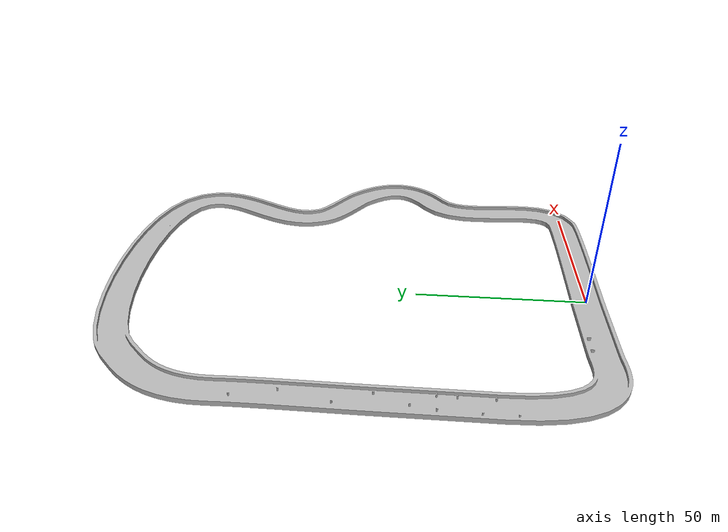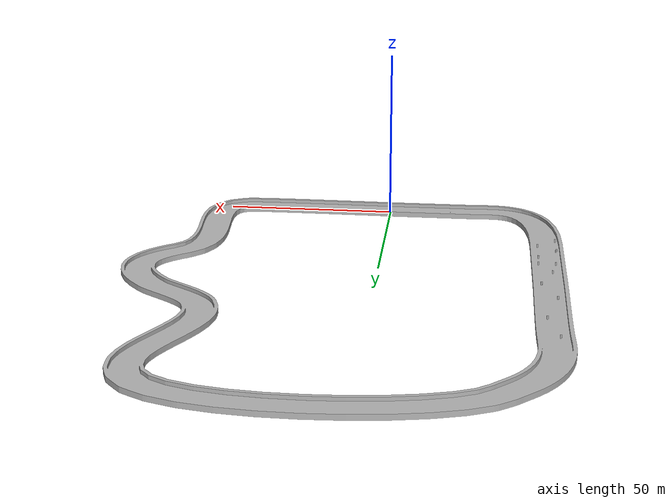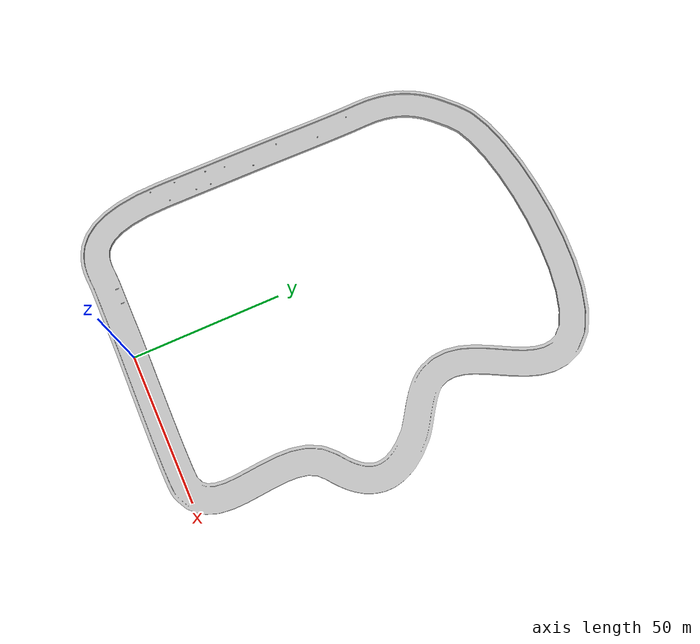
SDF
<?xml version="1.0"?>
<sdf version="1.6">
  <world name="depot">
<physics type="ode">
    <max_step_size>0.001</max_step_size>
    <real_time_factor>1.0</real_time_factor>
    <real_time_update_rate>1000</real_time_update_rate>
    </physics>
    <render_engine>ogre2</render_engine>
    <plugin name='ignition::gazebo::systems::Physics' filename='ignition-gazebo-physics-system'/>
    <plugin name='ignition::gazebo::systems::UserCommands' filename='ignition-gazebo-user-commands-system'/>
    <plugin name='ignition::gazebo::systems::SceneBroadcaster' filename='ignition-gazebo-scene-broadcaster-system'/>
    <plugin name='ignition::gazebo::systems::Contact' filename='ignition-gazebo-contact-system'/>
    <plugin name='ignition::gazebo::systems::Imu' filename='ignition-gazebo-imu-system'/>
    <plugin name='ignition::gazebo::systems::AirPressure' filename='ignition-gazebo-air-pressure-system'/>
    <plugin filename="ignition-gazebo-sensors-system" name="ignition::gazebo::systems::Sensors">
      <render_engine>ogre2</render_engine>
    </plugin>

    <gui fullscreen="0">
        <!-- 3D scene -->
      <plugin filename="GzScene3D" name="3D View">
      <ignition-gui>
          <title>3D View</title>
          <property type="bool" key="showTitleBar">false</property>
          <property type="string" key="state">docked</property>
      </ignition-gui>

    <engine>ogre2</engine>
      <scene>scene</scene>
      <ambient_light>1.0 1.0 1.0</ambient_light>
      <background_color>0.8 0.8 0.8</background_color>
      <camera_pose>-6 0 6 0 0.5 0</camera_pose>
    </plugin>

    <!-- World control -->
    <plugin filename="WorldControl" name="World control">
      <ignition-gui>
        <title>World control</title>
        <property type="bool" key="showTitleBar">false</property>
        <property type="bool" key="resizable">false</property>
        <property type="double" key="height">72</property>
        <property type="double" key="width">121</property>
        <property type="double" key="z">1</property>

        <property type="string" key="state">floating</property>
        <anchors target="3D View">
          <line own="left" target="left"/>
          <line own="bottom" target="bottom"/>
        </anchors>
      </ignition-gui>

      <play_pause>true</play_pause>
      <step>true</step>
    </plugin>

    <!-- World statistics -->
    <plugin filename="WorldStats" name="World stats">
        <ignition-gui>
            <title>World stats</title>
            <property type="bool" key="showTitleBar">false</property>
            <property type="bool" key="resizable">false</property>
            <property type="double" key="height">110</property>
            <property type="double" key="width">290</property>
            <property type="double" key="z">1</property>

            <property type="string" key="state">floating</property>
            <anchors target="3D View">
            <line own="right" target="right"/>
            <line own="bottom" target="bottom"/>
            </anchors>
        </ignition-gui>

        <sim_time>true</sim_time>
        <real_time>true</real_time>
        <real_time_factor>true</real_time_factor>
        <iterations>true</iterations>
    </plugin>

    <!-- Entity tree -->
    <plugin filename="EntityTree" name="Entity tree">
    </plugin>
  </gui>

    <light type="directional" name="sun">
      <cast_shadows>true</cast_shadows>
      <pose>0 0 10 0 0 0</pose>
      <diffuse>0.8 0.8 0.8 1</diffuse>
      <specular>0.2 0.2 0.2 1</specular>
      <attenuation>
        <range>1000</range>
        <constant>0.9</constant>
        <linear>0.01</linear>
        <quadratic>0.001</quadratic>
      </attenuation>
      <direction>-0.5 0.1 -0.9</direction>
    </light>

    <scene>
      <sky>
        <clouds>
          <speed>12</speed>
        </clouds>
      </sky>
      <grid>false</grid>
    </scene>

    <spherical_coordinates>
      <surface_model>EARTH_WGS84</surface_model>
      <latitude_deg>27.9162477</latitude_deg>
      <longitude_deg>30.5634376</longitude_deg>
      <elevation>0</elevation>
      <heading_deg>0</heading_deg>
    </spherical_coordinates>

    <include>
      <uri>model://shell_car_model/track</uri>
      <pose>0 0 0 0.0 0.0 0</pose>
      <name>track</name>
      <static>true</static>
    </include>

  </world>
</sdf>

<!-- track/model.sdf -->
<sdf version="1.6">
  <model name="track">
    <static>true</static>
    <link name="track">
      <collision name="collision">
        <geometry>
          <mesh>
            <scale>1 1 1</scale>
            <uri>model://shell_car_model/track/meshes/track.stl</uri>
          </mesh>
           <surface>
            <friction>
              <ode>
                <mu>0.7</mu>
                <mu2>0.7</mu2>
              </ode>
            </friction>
          </surface>
        </geometry>
      </collision>
      <visual name="visual">
        <geometry>
          <mesh>
            <scale>1 1 1</scale>
            <uri>model://shell_car_model/track/meshes/track.dae</uri>
          </mesh>
        </geometry>
      </visual>
    </link>
  </model>
</sdf>
